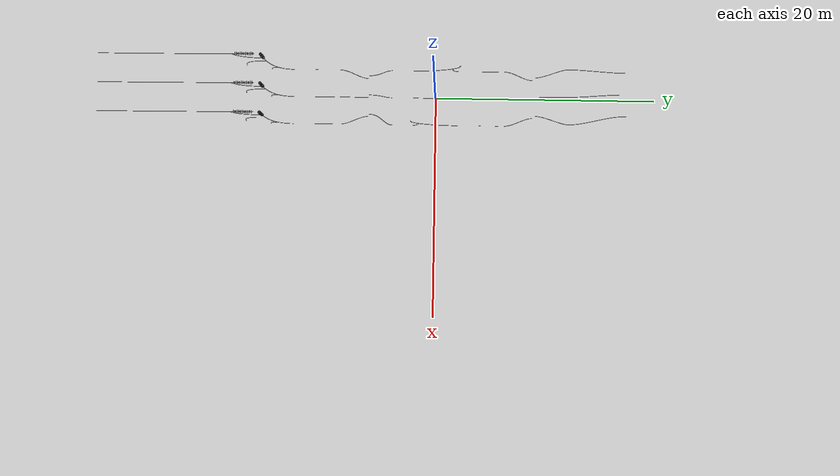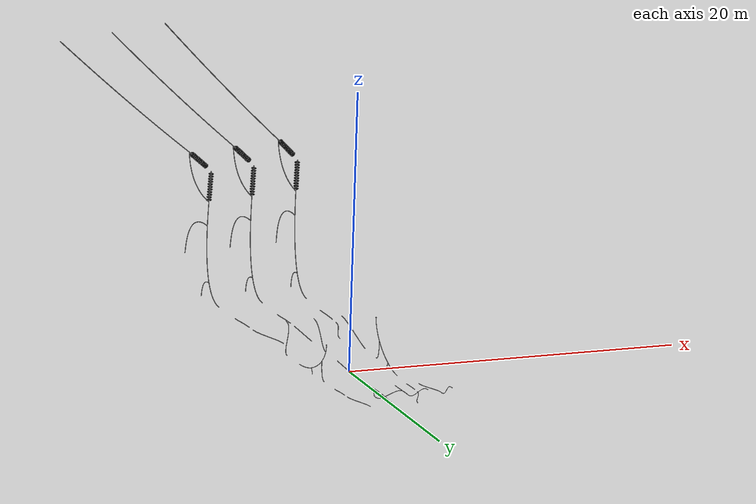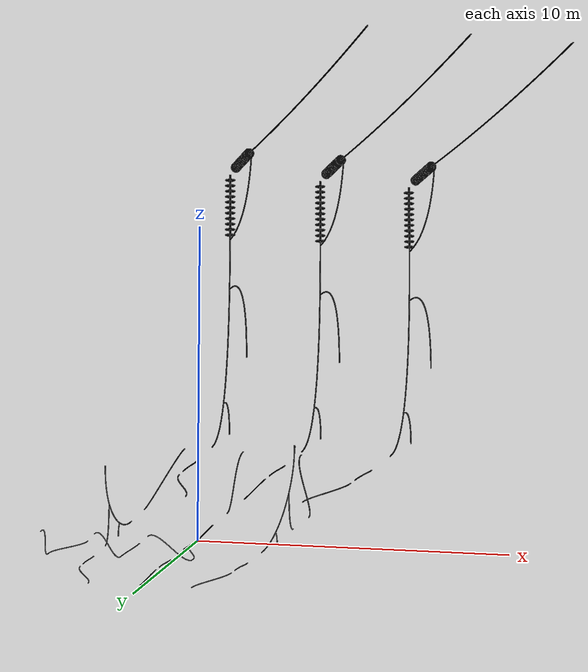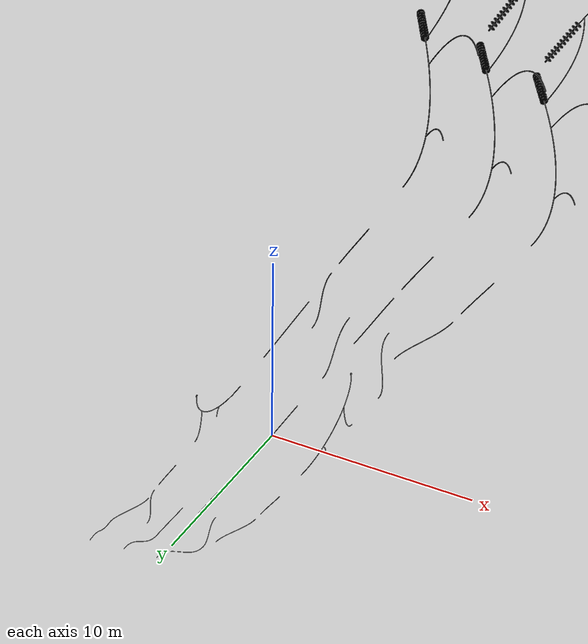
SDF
<?xml version="1.0" ?>
<sdf version="1.8">
  <model name="Electrical_Wires_1">
    <static>true</static>
    <link name="link">
      <collision name="collision">
        <geometry>
          <mesh>
            <uri>model://Electrical_Wires_1/Meshes/Electrical_Wires_1.stl</uri>
            <scale>0.001 0.001 0.001</scale>
          </mesh>
        </geometry>
      </collision>

      <visual name="visual">
        <geometry>
          <mesh>
            <uri>model://Electrical_Wires_1/Meshes/Electrical_Wires_1.stl</uri>
            <scale>0.001 0.001 0.001</scale>
          </mesh>
        </geometry>
        <material>
          <diffuse>0.0 0.0 0.0 1.0</diffuse>
        </material>
      </visual>
    </link>
  </model>
</sdf>
